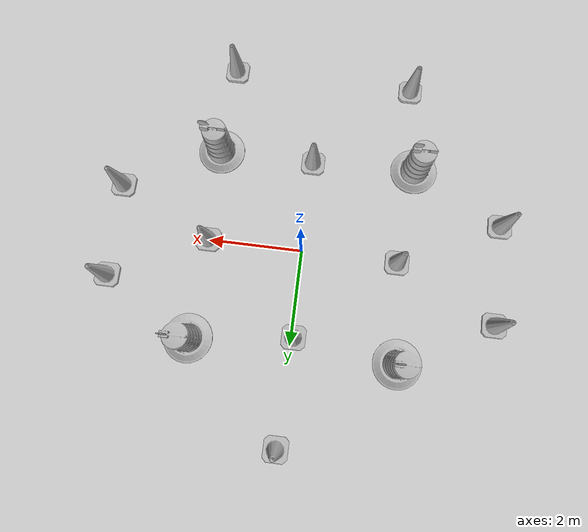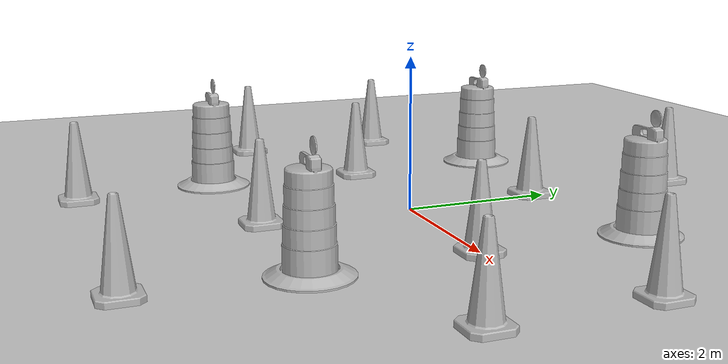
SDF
<sdf version="1.7">
 <world name="default">
  <light name="sun" type="directional">
   <pose>0 0 10 0 -0 0</pose>
   <diffuse>0.8 0.8 0.8 1</diffuse>
   <specular>0.2 0.2 0.2 1</specular>
   <attenuation>
    <range>1000</range>
    <constant>0.9</constant>
    <linear>0.01</linear>
    <quadratic>0.001</quadratic>
   </attenuation>
   <direction>-0.5 0.1 -0.9</direction>
   <spot><inner_angle>0</inner_angle><outer_angle>0</outer_angle><falloff>0</falloff></spot>
  </light>
  <model name="ground_plane">
   <static>1</static>
   <link name="link">
    <collision name="collision">
     <geometry><plane><normal>0 0 1</normal><size>100 100</size></plane></geometry>
     <surface>
      <contact><collide_bitmask>65535</collide_bitmask></contact>
      <friction><ode><mu>100</mu><mu2>50</mu2></ode></friction>
     </surface>
    </collision>
    <visual name="visual">
     <cast_shadows>0</cast_shadows>
     <geometry><plane><normal>0 0 1</normal><size>100 100</size></plane></geometry>
     <material>
      <script><uri>file://media/materials/scripts/gazebo.material</uri><name>Gazebo/Grey</name></script>
     </material>
    </visual>
   </link>
  </model>
  <gravity>0 0 -9.8</gravity>
  <magnetic_field>6e-06 2.3e-05 -4.2e-05</magnetic_field>
  <atmosphere type="adiabatic"/>
  <physics type="ode">
   <max_step_size>0.001</max_step_size>
   <real_time_factor>1</real_time_factor>
   <real_time_update_rate>1000</real_time_update_rate>
  </physics>
  <scene><ambient>0.4 0.4 0.4 1</ambient><background>0.7 0.7 0.7 1</background><shadows>1</shadows></scene>
  <spherical_coordinates>
   <surface_model>EARTH_WGS84</surface_model>
   <latitude_deg>0</latitude_deg>
   <longitude_deg>0</longitude_deg>
   <elevation>0</elevation>
   <heading_deg>0</heading_deg>
  </spherical_coordinates>
  <model name="Construction Cone">
   <link name="link">
    <collision name="collision">
     <geometry>
      <mesh><scale>10 10 10</scale><uri>model://construction_cone/meshes/construction_cone.dae</uri></mesh>
     </geometry>
    </collision>
    <visual name="visual">
     <geometry>
      <mesh><scale>10 10 10</scale><uri>model://construction_cone/meshes/construction_cone.dae</uri></mesh>
     </geometry>
    </visual>
    <inertial>
     <inertia><ixx>1</ixx><ixy>0</ixy><ixz>0</ixz><iyy>1</iyy><iyz>0</iyz><izz>1</izz></inertia>
     <mass>1</mass>
    </inertial>
   </link>
   <pose>-0.059471 1.82504 -8e-06 7e-06 -0 0</pose>
  </model>
  <model name="Construction Cone_0">
   <link name="link">
    <collision name="collision">
     <geometry>
      <mesh><scale>10 10 10</scale><uri>model://construction_cone/meshes/construction_cone.dae</uri></mesh>
     </geometry>
    </collision>
    <visual name="visual">
     <geometry>
      <mesh><scale>10 10 10</scale><uri>model://construction_cone/meshes/construction_cone.dae</uri></mesh>
     </geometry>
    </visual>
    <inertial>
     <inertia><ixx>1</ixx><ixy>0</ixy><ixz>0</ixz><iyy>1</iyy><iyz>0</iyz><izz>1</izz></inertia>
     <mass>1</mass>
    </inertial>
   </link>
   <pose>2.00805 -0.013175 0 -0 -0 -0</pose>
  </model>
  <model name="Construction Cone_1">
   <link name="link">
    <collision name="collision">
     <geometry>
      <mesh><scale>10 10 10</scale><uri>model://construction_cone/meshes/construction_cone.dae</uri></mesh>
     </geometry>
    </collision>
    <visual name="visual">
     <geometry>
      <mesh><scale>10 10 10</scale><uri>model://construction_cone/meshes/construction_cone.dae</uri></mesh>
     </geometry>
    </visual>
    <inertial>
     <inertia><ixx>1</ixx><ixy>0</ixy><ixz>0</ixz><iyy>1</iyy><iyz>0</iyz><izz>1</izz></inertia>
     <mass>1</mass>
    </inertial>
   </link>
   <pose>-0.013788 -1.99688 -1e-05 -0 -0 -0</pose>
  </model>
  <model name="Construction Cone_2">
   <link name="link">
    <collision name="collision">
     <geometry>
      <mesh><scale>10 10 10</scale><uri>model://construction_cone/meshes/construction_cone.dae</uri></mesh>
     </geometry>
    </collision>
    <visual name="visual">
     <geometry>
      <mesh><scale>10 10 10</scale><uri>model://construction_cone/meshes/construction_cone.dae</uri></mesh>
     </geometry>
    </visual>
    <inertial>
     <inertia><ixx>1</ixx><ixy>0</ixy><ixz>0</ixz><iyy>1</iyy><iyz>0</iyz><izz>1</izz></inertia>
     <mass>1</mass>
    </inertial>
   </link>
   <pose>-2.04407 0.015633 -0 0 -1e-06 0</pose>
  </model>
  <model name="Construction Barrel">
   <link name="link">
    <inertial>
     <pose>0 0 0.4 0 -0 0</pose>
     <mass>500</mass>
     <inertia><ixx>51.2096</ixx><iyy>51.2096</iyy><izz>25</izz><ixy>0</ixy><ixz>0</ixz><iyz>0</iyz></inertia>
    </inertial>
    <collision name="collision">
     <geometry><mesh><uri>model://construction_barrel/meshes/construction_barrel.dae</uri></mesh></geometry>
    </collision>
    <visual name="visual">
     <geometry><mesh><uri>model://construction_barrel/meshes/construction_barrel.dae</uri></mesh></geometry>
    </visual>
   </link>
   <pose>-2.22345 2.10694 -2e-06 7e-06 -2e-06 -2e-05</pose>
  </model>
  <model name="Construction Barrel_0">
   <link name="link">
    <inertial>
     <pose>0 0 0.4 0 -0 0</pose>
     <mass>500</mass>
     <inertia><ixx>51.2096</ixx><iyy>51.2096</iyy><izz>25</izz><ixy>0</ixy><ixz>0</ixz><iyz>0</iyz></inertia>
    </inertial>
    <collision name="collision">
     <geometry><mesh><uri>model://construction_barrel/meshes/construction_barrel.dae</uri></mesh></geometry>
    </collision>
    <visual name="visual">
     <geometry><mesh><uri>model://construction_barrel/meshes/construction_barrel.dae</uri></mesh></geometry>
    </visual>
   </link>
   <pose>2.10571 2.09585 -3e-06 -9e-06 -4e-06 -2e-05</pose>
  </model>
  <model name="Construction Barrel_1">
   <link name="link">
    <inertial>
     <pose>0 0 0.4 0 -0 0</pose>
     <mass>500</mass>
     <inertia><ixx>51.2096</ixx><iyy>51.2096</iyy><izz>25</izz><ixy>0</ixy><ixz>0</ixz><iyz>0</iyz></inertia>
    </inertial>
    <collision name="collision">
     <geometry><mesh><uri>model://construction_barrel/meshes/construction_barrel.dae</uri></mesh></geometry>
    </collision>
    <visual name="visual">
     <geometry><mesh><uri>model://construction_barrel/meshes/construction_barrel.dae</uri></mesh></geometry>
    </visual>
   </link>
   <pose>2.03941 -2.03899 -2e-06 1e-06 7e-06 -1.7e-05</pose>
  </model>
  <model name="Construction Barrel_2">
   <link name="link">
    <inertial>
     <pose>0 0 0.4 0 -0 0</pose>
     <mass>500</mass>
     <inertia><ixx>51.2096</ixx><iyy>51.2096</iyy><izz>25</izz><ixy>0</ixy><ixz>0</ixz><iyz>0</iyz></inertia>
    </inertial>
    <collision name="collision">
     <geometry><mesh><uri>model://construction_barrel/meshes/construction_barrel.dae</uri></mesh></geometry>
    </collision>
    <visual name="visual">
     <geometry><mesh><uri>model://construction_barrel/meshes/construction_barrel.dae</uri></mesh></geometry>
    </visual>
   </link>
   <pose>-2.24309 -2.08326 -2e-06 7e-06 -4e-06 -1.5e-05</pose>
  </model>
  <model name="Construction Cone_3">
   <link name="link">
    <collision name="collision">
     <geometry>
      <mesh><scale>10 10 10</scale><uri>model://construction_cone/meshes/construction_cone.dae</uri></mesh>
     </geometry>
    </collision>
    <visual name="visual">
     <geometry>
      <mesh><scale>10 10 10</scale><uri>model://construction_cone/meshes/construction_cone.dae</uri></mesh>
     </geometry>
    </visual>
    <inertial>
     <inertia><ixx>1</ixx><ixy>0</ixy><ixz>0</ixz><iyy>1</iyy><iyz>0</iyz><izz>1</izz></inertia>
     <mass>1</mass>
    </inertial>
   </link>
   <pose>-4.15141 1.08942 -0 0 -0 0</pose>
  </model>
  <model name="Construction Cone_4">
   <link name="link">
    <collision name="collision">
     <geometry>
      <mesh><scale>10 10 10</scale><uri>model://construction_cone/meshes/construction_cone.dae</uri></mesh>
     </geometry>
    </collision>
    <visual name="visual">
     <geometry>
      <mesh><scale>10 10 10</scale><uri>model://construction_cone/meshes/construction_cone.dae</uri></mesh>
     </geometry>
    </visual>
    <inertial>
     <inertia><ixx>1</ixx><ixy>0</ixy><ixz>0</ixz><iyy>1</iyy><iyz>0</iyz><izz>1</izz></inertia>
     <mass>1</mass>
    </inertial>
   </link>
   <pose>-4.18361 -1.03786 0 -0 -0 -0</pose>
  </model>
  <model name="Construction Cone_5">
   <link name="link">
    <collision name="collision">
     <geometry>
      <mesh><scale>10 10 10</scale><uri>model://construction_cone/meshes/construction_cone.dae</uri></mesh>
     </geometry>
    </collision>
    <visual name="visual">
     <geometry>
      <mesh><scale>10 10 10</scale><uri>model://construction_cone/meshes/construction_cone.dae</uri></mesh>
     </geometry>
    </visual>
    <inertial>
     <inertia><ixx>1</ixx><ixy>0</ixy><ixz>0</ixz><iyy>1</iyy><iyz>0</iyz><izz>1</izz></inertia>
     <mass>1</mass>
    </inertial>
   </link>
   <pose>0.019037 4.02691 -8e-06 0 1e-06 0</pose>
  </model>
  <model name="Construction Cone_6">
   <link name="link">
    <collision name="collision">
     <geometry>
      <mesh><scale>10 10 10</scale><uri>model://construction_cone/meshes/construction_cone.dae</uri></mesh>
     </geometry>
    </collision>
    <visual name="visual">
     <geometry>
      <mesh><scale>10 10 10</scale><uri>model://construction_cone/meshes/construction_cone.dae</uri></mesh>
     </geometry>
    </visual>
    <inertial>
     <inertia><ixx>1</ixx><ixy>0</ixy><ixz>0</ixz><iyy>1</iyy><iyz>0</iyz><izz>1</izz></inertia>
     <mass>1</mass>
    </inertial>
   </link>
   <pose>4.01789 0.994781 -1e-05 0 -0 0</pose>
  </model>
  <model name="Construction Cone_7">
   <link name="link">
    <collision name="collision">
     <geometry>
      <mesh><scale>10 10 10</scale><uri>model://construction_cone/meshes/construction_cone.dae</uri></mesh>
     </geometry>
    </collision>
    <visual name="visual">
     <geometry>
      <mesh><scale>10 10 10</scale><uri>model://construction_cone/meshes/construction_cone.dae</uri></mesh>
     </geometry>
    </visual>
    <inertial>
     <inertia><ixx>1</ixx><ixy>0</ixy><ixz>0</ixz><iyy>1</iyy><iyz>0</iyz><izz>1</izz></inertia>
     <mass>1</mass>
    </inertial>
   </link>
   <pose>4.04908 -1.00373 -0 0 -0 0</pose>
  </model>
  <model name="Construction Cone_8">
   <link name="link">
    <collision name="collision">
     <geometry>
      <mesh><scale>10 10 10</scale><uri>model://construction_cone/meshes/construction_cone.dae</uri></mesh>
     </geometry>
    </collision>
    <visual name="visual">
     <geometry>
      <mesh><scale>10 10 10</scale><uri>model://construction_cone/meshes/construction_cone.dae</uri></mesh>
     </geometry>
    </visual>
    <inertial>
     <inertia><ixx>1</ixx><ixy>0</ixy><ixz>0</ixz><iyy>1</iyy><iyz>0</iyz><izz>1</izz></inertia>
     <mass>1</mass>
    </inertial>
   </link>
   <pose>-2.01531 -3.97276 -0 0 -0 0</pose>
  </model>
  <model name="Construction Cone_9">
   <link name="link">
    <collision name="collision">
     <geometry>
      <mesh><scale>10 10 10</scale><uri>model://construction_cone/meshes/construction_cone.dae</uri></mesh>
     </geometry>
    </collision>
    <visual name="visual">
     <geometry>
      <mesh><scale>10 10 10</scale><uri>model://construction_cone/meshes/construction_cone.dae</uri></mesh>
     </geometry>
    </visual>
    <inertial>
     <inertia><ixx>1</ixx><ixy>0</ixy><ixz>0</ixz><iyy>1</iyy><iyz>0</iyz><izz>1</izz></inertia>
     <mass>1</mass>
    </inertial>
   </link>
   <pose>1.97099 -4.01062 -0 0 -0 0</pose>
  </model>
 </world>
</sdf>
